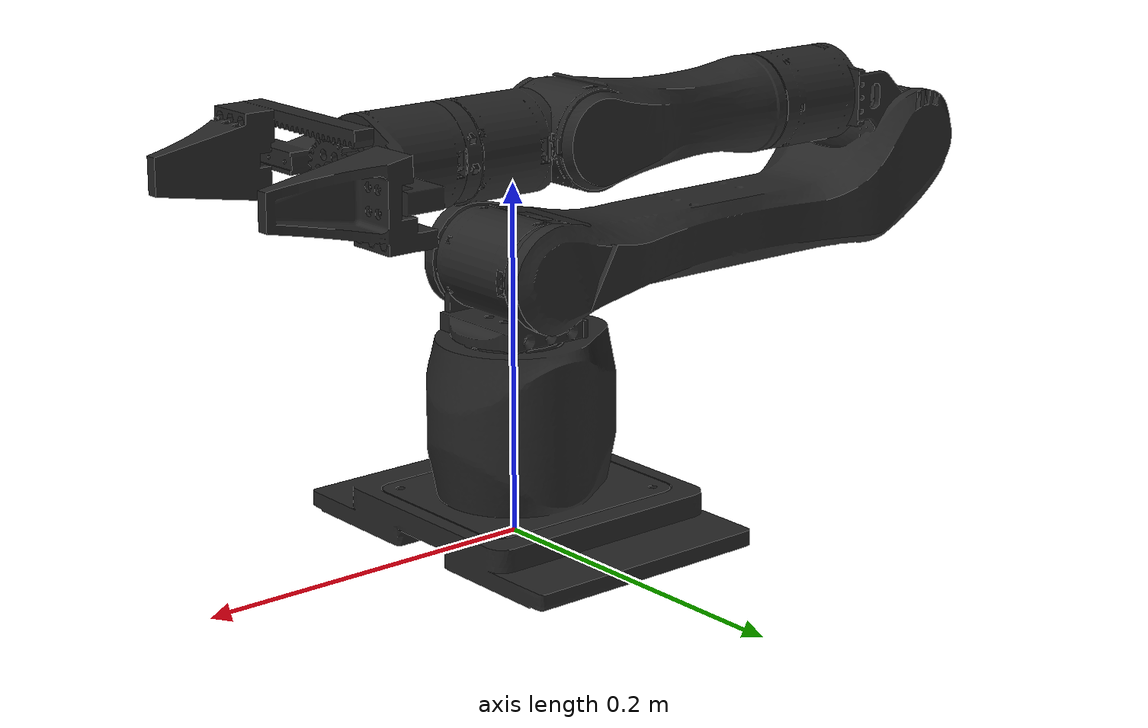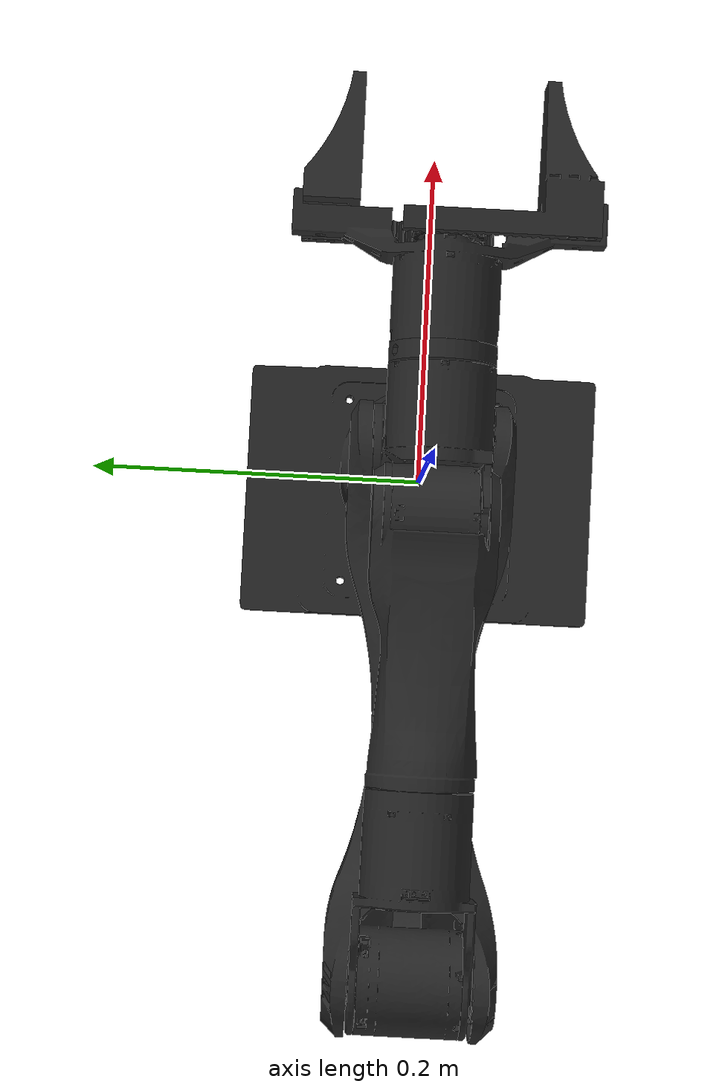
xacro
<?xml version="1.0"?>
<robot xmlns:xacro="http://www.ros.org/wiki/xacro" name="alicia_m_v1_1_follower">
    <xacro:arg name="initial_positions_file" default="initial_positions.yaml" />
    <xacro:arg name="ros2_control_plugin" default="mock_components/GenericSystem" />
    <xacro:arg name="serial_port" default="/dev/my_robot" />
    <xacro:arg name="baudrate" default="1000000" />
    <xacro:arg name="control_mode" default="pv" />
    <xacro:arg name="default_speed" default="1.0" />
    <xacro:arg name="mit_kp" default="50.0" />
    <xacro:arg name="mit_kd" default="2.0" />

    <!-- 导入 URDF 模型 -->
    <xacro:include filename="$(find alicia_m_descriptions)/urdf/Alicia_M_v1_1/Alicia_M_v1_1_follower.urdf" />

    <!-- 导入 ros2_control 配置 -->
    <xacro:include filename="alicia_m_v1_1_follower.ros2_control.xacro" />

    <xacro:alicia_m_v1_1_follower_ros2_control
        name="AliciaHardware"
        initial_positions_file="$(arg initial_positions_file)"
        ros2_control_plugin="$(arg ros2_control_plugin)"
        serial_port="$(arg serial_port)"
        baudrate="$(arg baudrate)"
        control_mode="$(arg control_mode)"
        default_speed="$(arg default_speed)"
        mit_kp="$(arg mit_kp)"
        mit_kd="$(arg mit_kd)"/>

</robot>

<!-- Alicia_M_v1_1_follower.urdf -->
<robot
  xmlns:xacro="http://www.ros.org/wiki/xacro"
  name="alicia_m_v1_1_follower">
  <xacro:arg name="alicia_base_link" default="base_link" />
  <xacro:arg name="use_collision_meshes" default="true" />
   <mujoco>
    <compiler meshdir="../../meshes/Alicia_M_v1_1/follower" discardvisual="false" />
  </mujoco>
  <link
    name="$(arg alicia_base_link)">
    <inertial>
      <origin
        xyz="-0.0074155 8.4202E-06 0.038118"
        rpy="0 0 0" />
      <mass
        value="2.5385" />
      <inertia
        ixx="0.0058527"
        ixy="2.114E-07"
        ixz="1.4479E-06"
        iyy="0.0045151"
        iyz="3.0868E-08"
        izz="0.0084155" />
    </inertial>
    <visual>
      <origin
        xyz="0 0 0"
        rpy="0 0 0" />
      <geometry>
        <mesh
          filename="package://alicia_m_descriptions/meshes/Alicia_M_v1_1/follower/base_link.STL" />
      </geometry>
      <material
        name="">
        <color
          rgba="0.15 0.15 0.15 1" />
      </material>
    </visual>
    <xacro:if value="$(arg use_collision_meshes)">
    <collision>
      <origin
        xyz="0 0 0"
        rpy="0 0 0" />
      <geometry>
        <mesh
          filename="package://alicia_m_descriptions/meshes/Alicia_M_v1_1/follower/base_link.STL" />
      </geometry>
    </collision>
    </xacro:if>
  </link>
  <link
    name="link1">
    <inertial>
      <origin
        xyz="0.00037898 -0.0010139 0.039387"
        rpy="0 0 0" />
      <mass
        value="0.54365" />
      <inertia
        ixx="0.00018974"
        ixy="-3.0439E-07"
        ixz="-2.5092E-07"
        iyy="0.00022251"
        iyz="4.4259E-07"
        izz="0.0002033" />
    </inertial>
    <visual>
      <origin
        xyz="0 0 0"
        rpy="0 0 0" />
      <geometry>
        <mesh
          filename="package://alicia_m_descriptions/meshes/Alicia_M_v1_1/follower/link1.STL" />
      </geometry>
      <material
        name="">
        <color
          rgba="0.15 0.15 0.15 1" />
      </material>
    </visual>
    <xacro:if value="$(arg use_collision_meshes)">
    <collision>
      <origin
        xyz="0 0 0"
        rpy="0 0 0" />
      <geometry>
        <mesh
          filename="package://alicia_m_descriptions/meshes/Alicia_M_v1_1/follower/link1.STL" />
      </geometry>
    </collision>
    </xacro:if>
  </link>
  <joint
    name="joint1"
    type="revolute">
    <origin
      xyz="0 0 0.10705"
      rpy="0 0 0" />
    <parent
      link="$(arg alicia_base_link)" />
    <child
      link="link1" />
    <axis
      xyz="0 0 1" />
    <limit
      lower="-2.75"
      upper="2.75"
      effort="5"
      velocity="10" />
  </joint>
  <link
    name="link2">
    <inertial>
      <origin
        xyz="-0.19722 0.016179 0.00075589"
        rpy="0 0 0" />
      <mass
        value="1.1153" />
      <inertia
        ixx="0.00057637"
        ixy="0.00022961"
        ixz="-1.956E-07"
        iyy="0.0033441"
        iyz="6.7003E-07"
        izz="0.0032279" />
    </inertial>
    <visual>
      <origin
        xyz="0 0 0"
        rpy="0 0 0" />
      <geometry>
        <mesh
          filename="package://alicia_m_descriptions/meshes/Alicia_M_v1_1/follower/link2.STL" />
      </geometry>
      <material
        name="">
        <color
          rgba="0.15 0.15 0.15 1" />
      </material>
    </visual>
    <xacro:if value="$(arg use_collision_meshes)">
    <collision>
      <origin
        xyz="0 0 0"
        rpy="0 0 0" />
      <geometry>
        <mesh
          filename="package://alicia_m_descriptions/meshes/Alicia_M_v1_1/follower/link2.STL" />
      </geometry>
    </collision>
    </xacro:if>
  </link>
  <joint
    name="joint2"
    type="revolute">
    <origin
      xyz="0 0 0.046"
      rpy="1.5708 0 0" />
    <parent
      link="link1" />
    <child
      link="link2" />
    <axis
      xyz="0 0 1" />
    <limit
      lower="-3.14"
      upper="0"
      effort="5"
      velocity="10" />
  </joint>
  <link
    name="link3">
    <inertial>
      <origin
        xyz="0.026259 -0.064912 -0.00065987"
        rpy="0 0 0" />
      <mass
        value="0.4356" />
      <inertia
        ixx="0.00012982"
        ixy="9.5271E-06"
        ixz="-6.8812E-08"
        iyy="0.0001789"
        iyz="1.5081E-07"
        izz="0.00014855" />
    </inertial>
    <visual>
      <origin
        xyz="0 0 0"
        rpy="0 0 0" />
      <geometry>
        <mesh
          filename="package://alicia_m_descriptions/meshes/Alicia_M_v1_1/follower/link3.STL" />
      </geometry>
      <material
        name="">
        <color
          rgba="0.15 0.15 0.15 1" />
      </material>
    </visual>
    <xacro:if value="$(arg use_collision_meshes)">
    <collision>
      <origin
        xyz="0 0 0"
        rpy="0 0 0" />
      <geometry>
        <mesh
          filename="package://alicia_m_descriptions/meshes/Alicia_M_v1_1/follower/link3.STL" />
      </geometry>
    </collision>
    </xacro:if>
  </link>
  <joint
    name="joint3"
    type="revolute">
    <origin
      xyz="-0.28185 0.040324 0"
      rpy="0 0 1.5708" />
    <parent
      link="link2" />
    <child
      link="link3" />
    <axis
      xyz="0 0 -1" />
    <limit
      lower="-3.14"
      upper="0"
      effort="5"
      velocity="10" />
  </joint>
  <link
    name="link4">
    <inertial>
      <origin
        xyz="3.9183E-06 0.001144 0.11644"
        rpy="0 0 0" />
      <mass
        value="0.57265" />
      <inertia
        ixx="0.00034557"
        ixy="-1.3549E-07"
        ixz="-1.4243E-09"
        iyy="0.00037178"
        iyz="-7.3926E-08"
        izz="0.00019935" />
    </inertial>
    <visual>
      <origin
        xyz="0 0 0"
        rpy="0 0 0" />
      <geometry>
        <mesh
          filename="package://alicia_m_descriptions/meshes/Alicia_M_v1_1/follower/link4.STL" />
      </geometry>
      <material
        name="">
        <color
          rgba="0.15 0.15 0.15 1" />
      </material>
    </visual>
    <xacro:if value="$(arg use_collision_meshes)">
    <collision>
      <origin
        xyz="0 0 0"
        rpy="0 0 0" />
      <geometry>
        <mesh
          filename="package://alicia_m_descriptions/meshes/Alicia_M_v1_1/follower/link4.STL" />
      </geometry>
    </collision>
    </xacro:if>
  </link>
  <joint
    name="joint4"
    type="revolute">
    <origin
      xyz="0.028563 -0.091416 0"
      rpy="-1.5708 0 -3.1412" />
    <parent
      link="link3" />
    <child
      link="link4" />
    <axis
      xyz="-0.00034722 0 1" />
    <limit
      lower="-1.57"
      upper="1.57"
      effort="5"
      velocity="10" />
  </joint>
  <link
    name="link5">
    <inertial>
      <origin
        xyz="-0.0001129 0.054381 0.0022373"
        rpy="0 0 0" />
      <mass
        value="0.38891" />
      <inertia
        ixx="0.00010415"
        ixy="-1.2554E-07"
        ixz="-1.4534E-07"
        iyy="0.0001484"
        iyz="5.2027E-08"
        izz="0.00011043" />
    </inertial>
    <visual>
      <origin
        xyz="0 0 0"
        rpy="0 0 0" />
      <geometry>
        <mesh
          filename="package://alicia_m_descriptions/meshes/Alicia_M_v1_1/follower/link5.STL" />
      </geometry>
      <material
        name="">
        <color
          rgba="0.15 0.15 0.15 1" />
      </material>
    </visual>
    <xacro:if value="$(arg use_collision_meshes)">
    <collision>
      <origin
        xyz="0 0 0"
        rpy="0 0 0" />
      <geometry>
        <mesh
          filename="package://alicia_m_descriptions/meshes/Alicia_M_v1_1/follower/link5.STL" />
      </geometry>
    </collision>
    </xacro:if>
  </link>
  <joint
    name="joint5"
    type="revolute">
    <origin
      xyz="-8.0556E-05 0 0.151"
      rpy="1.5708 0.00034722 0" />
    <parent
      link="link4" />
    <child
      link="link5" />
    <axis
      xyz="0 0 1" />
    <limit
      lower="-1.57"
      upper="1.57"
      effort="5"
      velocity="10" />
  </joint>
  <link
    name="link6">
    <inertial>
      <origin
        xyz="-0.00011097 -0.00066921 0.038228"
        rpy="0 0 0" />
      <mass
        value="0.35658" />
      <inertia
        ixx="0.00018353"
        ixy="5.0323E-08"
        ixz="-1.1884E-07"
        iyy="9.5615E-05"
        iyz="-1.2974E-08"
        izz="0.00021713" />
    </inertial>
    <visual>
      <origin
        xyz="0 0 0"
        rpy="0 0 0" />
      <geometry>
        <mesh
          filename="package://alicia_m_descriptions/meshes/Alicia_M_v1_1/follower/link6.STL" />
      </geometry>
      <material
        name="">
        <color
          rgba="0.15 0.15 0.15 1" />
      </material>
    </visual>
    <xacro:if value="$(arg use_collision_meshes)">
    <collision>
      <origin
        xyz="0 0 0"
        rpy="0 0 0" />
      <geometry>
        <mesh
          filename="package://alicia_m_descriptions/meshes/Alicia_M_v1_1/follower/link6.STL" />
      </geometry>
    </collision>
    </xacro:if>
  </link>
  <joint
    name="joint6"
    type="revolute">
    <origin
      xyz="5.2431E-05 0.081 0"
      rpy="-1.5708 0 0.00034722" />
    <parent
      link="link5" />
    <child
      link="link6" />
    <axis
      xyz="-0.00034722 0 1" />
    <limit
      lower="-2.75"
      upper="2.75"
      effort="5"
      velocity="10" />
  </joint>
  <link
    name="link7">
    <inertial>
      <origin
        xyz="-0.0062638 -0.056089 0.0037593"
        rpy="0 0 0" />
      <mass
        value="0.048674" />
      <inertia
        ixx="2.5291E-05"
        ixy="-1.0647E-06"
        ixz="1.8963E-07"
        iyy="1.9457E-05"
        iyz="2.7404E-06"
        izz="1.9529E-05" />
    </inertial>
    <visual>
      <origin
        xyz="0 0 0"
        rpy="0 0 0" />
      <geometry>
        <mesh
          filename="package://alicia_m_descriptions/meshes/Alicia_M_v1_1/follower/link7.STL" />
      </geometry>
      <material
        name="">
        <color
          rgba="0.15 0.15 0.15 1" />
      </material>
    </visual>
    <xacro:if value="$(arg use_collision_meshes)">
    <collision>
      <origin
        xyz="0 0 0"
        rpy="0 0 0" />
      <geometry>
        <mesh
          filename="package://alicia_m_descriptions/meshes/Alicia_M_v1_1/follower/link7.STL" />
      </geometry>
    </collision>
    </xacro:if>
  </link>
  <joint
    name="left_finger"
    type="prismatic">
    <origin
      xyz="0 -0.048175 0.151"
      rpy="1.5708 0.00034722 0" />
    <parent
      link="link6" />
    <child
      link="link7" />
    <axis
      xyz="0 0 1" />
    <limit
      lower="-0.05"
      upper="0.0"
      effort="5"
      velocity="10" />
  </joint>
  <link
    name="link8">
    <inertial>
      <origin
        xyz="0.0062638 -0.056089 -0.0037593"
        rpy="0 0 0" />
      <mass
        value="0.048674" />
      <inertia
        ixx="2.5291E-05"
        ixy="1.0647E-06"
        ixz="1.8963E-07"
        iyy="1.9457E-05"
        iyz="-2.7404E-06"
        izz="1.9529E-05" />
    </inertial>
    <visual>
      <origin
        xyz="0 0 0"
        rpy="0 0 0" />
      <geometry>
        <mesh
          filename="package://alicia_m_descriptions/meshes/Alicia_M_v1_1/follower/link8.STL" />
      </geometry>
      <material
        name="">
        <color
          rgba="0.15 0.15 0.15 1" />
      </material>
    </visual>
    <xacro:if value="$(arg use_collision_meshes)">
    <collision>
      <origin
        xyz="0 0 0"
        rpy="0 0 0" />
      <geometry>
        <mesh
          filename="package://alicia_m_descriptions/meshes/Alicia_M_v1_1/follower/link8.STL" />
      </geometry>
    </collision>
    </xacro:if>
  </link>
  <joint
    name="right_finger"
    type="prismatic">
    <origin
      xyz="0 0.046825 0.151"
      rpy="1.5708 0.00034722 0" />
    <parent
      link="link6" />
    <child
      link="link8" />
    <axis
      xyz="0 0 1" />
    <limit
      lower="0.0"
      upper="0.05"
      effort="5"
      velocity="10" />
    <mimic joint="left_finger" multiplier="-1.0" offset="0" />
  </joint>
  <link
    name="tool0">
  </link>
  <joint
    name="tool0_fixed_joint"
    type="fixed">
    <origin
      xyz="0 0 0.15"
      rpy="0 0 0" />
    <parent
      link="link6" />
    <child
      link="tool0" />
    <axis
      xyz="0 0 0" />
  </joint>
</robot>
